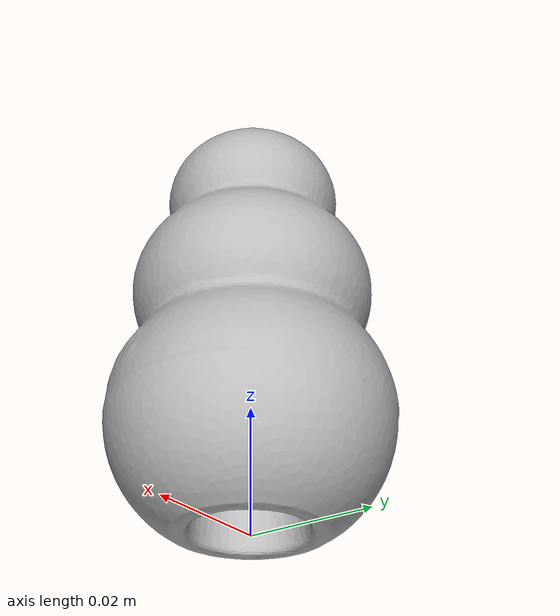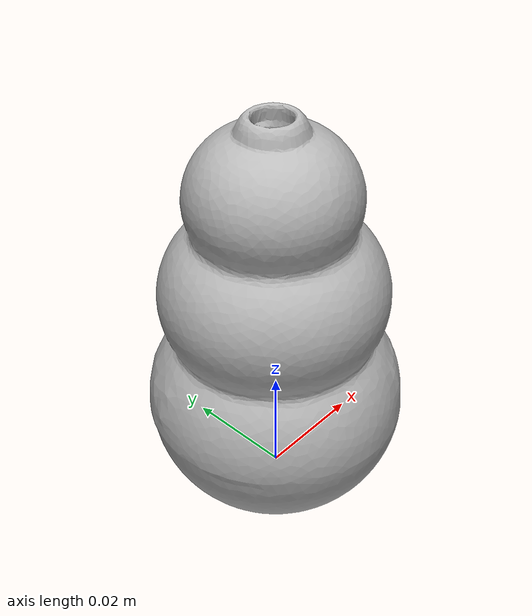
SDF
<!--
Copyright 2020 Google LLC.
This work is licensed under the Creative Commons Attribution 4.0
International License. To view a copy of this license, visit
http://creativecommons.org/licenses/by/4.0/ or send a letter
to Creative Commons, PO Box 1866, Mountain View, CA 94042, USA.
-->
<?xml version="1.0" ?>
<sdf version="1.6">
  <model name="Kong_Puppy_Teething_Rubber_Small_Pink">
    <link name="link_0">
      <visual name="visual">
        <geometry>
          <mesh>
            <uri>meshes/model.obj</uri>
          </mesh>
        </geometry>
      </visual>
      <collision name="collision_0">
        <geometry>
          <mesh>
            <uri>meshes/model.obj</uri>
          </mesh>
        </geometry>
      </collision>
    </link>
  </model>
</sdf>
